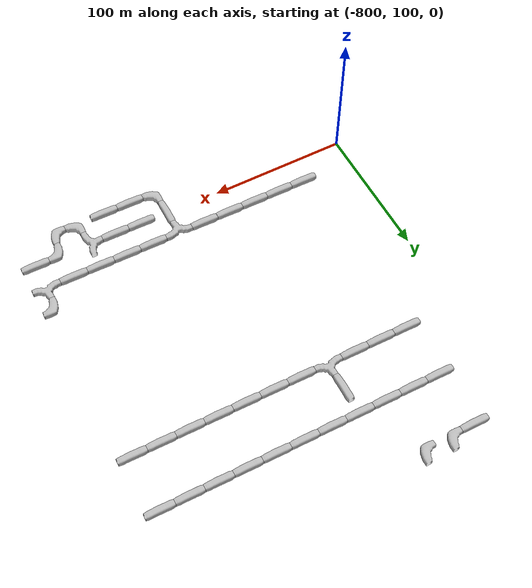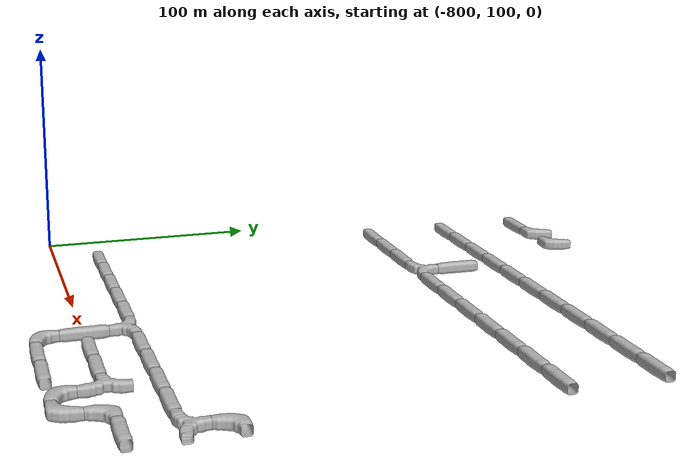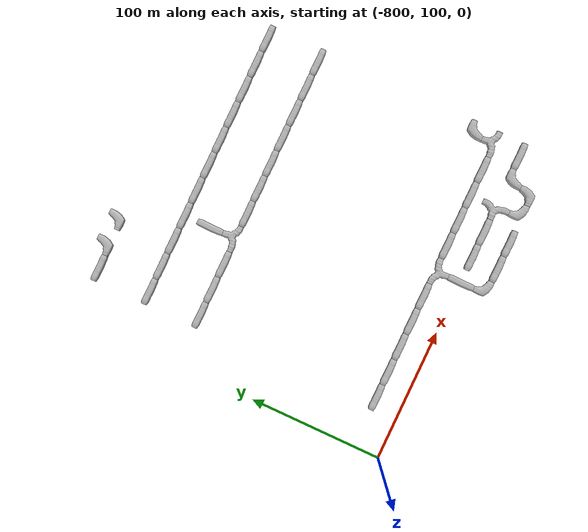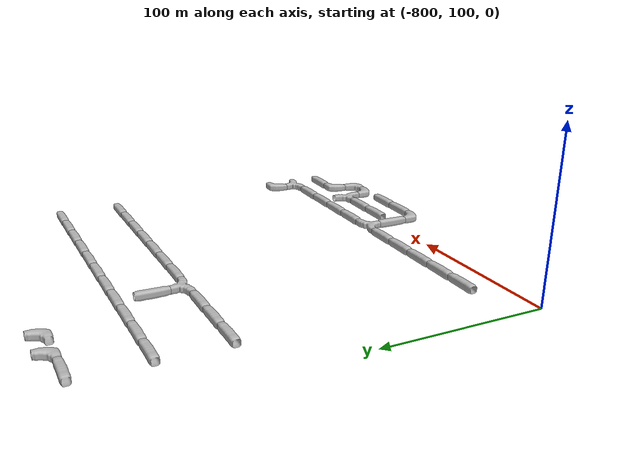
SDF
<sdf version="1.6">
 <world name="cave_16000">
  <include>
   <static>true</static>
   <name>cave_-28_5</name>
   <pose>-560 100 0 0 0 1.5707963267948966</pose>
   <uri>model://cave_straight_20m</uri>
  </include>
  <include>
   <static>true</static>
   <name>cave_-29_5</name>
   <pose>-580 100 0 0 0 -1.5707963267948966</pose>
   <uri>model://cave_L_20m</uri>
  </include>
  <include>
   <static>true</static>
   <name>cave_-29_4</name>
   <pose>-580 80 0 0 0 1.5707963267948966</pose>
   <uri>model://cave_L_20m</uri>
  </include>
  <include>
   <static>true</static>
   <name>cave_-30_4</name>
   <pose>-600 80 0 0 0 0.0</pose>
   <uri>model://cave_L_20m</uri>
  </include>
  <include>
   <static>true</static>
   <name>cave_-30_5</name>
   <pose>-600 100 0 0 0 1.5707963267948966</pose>
   <uri>model://cave_3way_20m</uri>
  </include>
  <include>
   <static>true</static>
   <name>cave_-31_5</name>
   <pose>-620 100 0 0 0 1.5707963267948966</pose>
   <uri>model://cave_straight_20m</uri>
  </include>
  <include>
   <static>true</static>
   <name>cave_-32_5</name>
   <pose>-640 100 0 0 0 1.5707963267948966</pose>
   <uri>model://cave_straight_20m</uri>
  </include>
  <include>
   <static>true</static>
   <name>cave_-28_7</name>
   <pose>-560 140 0 0 0 -1.5707963267948966</pose>
   <uri>model://cave_L_20m</uri>
  </include>
  <include>
   <static>true</static>
   <name>cave_-28_6</name>
   <pose>-560 120 0 0 0 0.0</pose>
   <uri>model://cave_3way_20m</uri>
  </include>
  <include>
   <static>true</static>
   <name>cave_-29_6</name>
   <pose>-580 120 0 0 0 1.5707963267948966</pose>
   <uri>model://cave_straight_20m</uri>
  </include>
  <include>
   <static>true</static>
   <name>cave_-30_6</name>
   <pose>-600 120 0 0 0 1.5707963267948966</pose>
   <uri>model://cave_straight_20m</uri>
  </include>
  <include>
   <static>true</static>
   <name>cave_-31_6</name>
   <pose>-620 120 0 0 0 1.5707963267948966</pose>
   <uri>model://cave_straight_20m</uri>
  </include>
  <include>
   <static>true</static>
   <name>cave_-32_6</name>
   <pose>-640 120 0 0 0 1.5707963267948966</pose>
   <uri>model://cave_straight_20m</uri>
  </include>
  <include>
   <static>true</static>
   <name>cave_-33_6</name>
   <pose>-660 120 0 0 0 3.141592653589793</pose>
   <uri>model://cave_3way_20m</uri>
  </include>
  <include>
   <static>true</static>
   <name>cave_-33_5</name>
   <pose>-660 100 0 0 0 0.0</pose>
   <uri>model://cave_straight_20m</uri>
  </include>
  <include>
   <static>true</static>
   <name>cave_-33_4</name>
   <pose>-660 80 0 0 0 0.0</pose>
   <uri>model://cave_L_20m</uri>
  </include>
  <include>
   <static>true</static>
   <name>cave_-32_4</name>
   <pose>-640 80 0 0 0 1.5707963267948966</pose>
   <uri>model://cave_straight_20m</uri>
  </include>
  <include>
   <static>true</static>
   <name>cave_-31_4</name>
   <pose>-620 80 0 0 0 1.5707963267948966</pose>
   <uri>model://cave_straight_20m</uri>
  </include>
  <include>
   <static>true</static>
   <name>cave_-34_6</name>
   <pose>-680 120 0 0 0 1.5707963267948966</pose>
   <uri>model://cave_straight_20m</uri>
  </include>
  <include>
   <static>true</static>
   <name>cave_-35_6</name>
   <pose>-700 120 0 0 0 1.5707963267948966</pose>
   <uri>model://cave_straight_20m</uri>
  </include>
  <include>
   <static>true</static>
   <name>cave_-36_6</name>
   <pose>-720 120 0 0 0 1.5707963267948966</pose>
   <uri>model://cave_straight_20m</uri>
  </include>
  <include>
   <static>true</static>
   <name>cave_-37_6</name>
   <pose>-740 120 0 0 0 1.5707963267948966</pose>
   <uri>model://cave_straight_20m</uri>
  </include>
  <include>
   <static>true</static>
   <name>cave_-38_6</name>
   <pose>-760 120 0 0 0 1.5707963267948966</pose>
   <uri>model://cave_straight_20m</uri>
  </include>
  <include>
   <static>true</static>
   <name>cave_-28_15</name>
   <pose>-560 300 0 0 0 1.5707963267948966</pose>
   <uri>model://cave_straight_20m</uri>
  </include>
  <include>
   <static>true</static>
   <name>cave_-29_15</name>
   <pose>-580 300 0 0 0 1.5707963267948966</pose>
   <uri>model://cave_straight_20m</uri>
  </include>
  <include>
   <static>true</static>
   <name>cave_-30_15</name>
   <pose>-600 300 0 0 0 1.5707963267948966</pose>
   <uri>model://cave_straight_20m</uri>
  </include>
  <include>
   <static>true</static>
   <name>cave_-31_15</name>
   <pose>-620 300 0 0 0 1.5707963267948966</pose>
   <uri>model://cave_straight_20m</uri>
  </include>
  <include>
   <static>true</static>
   <name>cave_-32_15</name>
   <pose>-640 300 0 0 0 1.5707963267948966</pose>
   <uri>model://cave_straight_20m</uri>
  </include>
  <include>
   <static>true</static>
   <name>cave_-33_15</name>
   <pose>-660 300 0 0 0 1.5707963267948966</pose>
   <uri>model://cave_straight_20m</uri>
  </include>
  <include>
   <static>true</static>
   <name>cave_-34_15</name>
   <pose>-680 300 0 0 0 1.5707963267948966</pose>
   <uri>model://cave_straight_20m</uri>
  </include>
  <include>
   <static>true</static>
   <name>cave_-35_15</name>
   <pose>-700 300 0 0 0 1.5707963267948966</pose>
   <uri>model://cave_straight_20m</uri>
  </include>
  <include>
   <static>true</static>
   <name>cave_-36_15</name>
   <pose>-720 300 0 0 0 1.5707963267948966</pose>
   <uri>model://cave_straight_20m</uri>
  </include>
  <include>
   <static>true</static>
   <name>cave_-37_15</name>
   <pose>-740 300 0 0 0 1.5707963267948966</pose>
   <uri>model://cave_straight_20m</uri>
  </include>
  <include>
   <static>true</static>
   <name>cave_-38_15</name>
   <pose>-760 300 0 0 0 1.5707963267948966</pose>
   <uri>model://cave_straight_20m</uri>
  </include>
  <include>
   <static>true</static>
   <name>cave_-38_13</name>
   <pose>-760 260 0 0 0 1.5707963267948966</pose>
   <uri>model://cave_straight_20m</uri>
  </include>
  <include>
   <static>true</static>
   <name>cave_-37_13</name>
   <pose>-740 260 0 0 0 1.5707963267948966</pose>
   <uri>model://cave_straight_20m</uri>
  </include>
  <include>
   <static>true</static>
   <name>cave_-36_13</name>
   <pose>-720 260 0 0 0 1.5707963267948966</pose>
   <uri>model://cave_straight_20m</uri>
  </include>
  <include>
   <static>true</static>
   <name>cave_-35_13</name>
   <pose>-700 260 0 0 0 0.0</pose>
   <uri>model://cave_3way_20m</uri>
  </include>
  <include>
   <static>true</static>
   <name>cave_-34_13</name>
   <pose>-680 260 0 0 0 1.5707963267948966</pose>
   <uri>model://cave_straight_20m</uri>
  </include>
  <include>
   <static>true</static>
   <name>cave_-33_13</name>
   <pose>-660 260 0 0 0 1.5707963267948966</pose>
   <uri>model://cave_straight_20m</uri>
  </include>
  <include>
   <static>true</static>
   <name>cave_-32_13</name>
   <pose>-640 260 0 0 0 1.5707963267948966</pose>
   <uri>model://cave_straight_20m</uri>
  </include>
  <include>
   <static>true</static>
   <name>cave_-31_13</name>
   <pose>-620 260 0 0 0 1.5707963267948966</pose>
   <uri>model://cave_straight_20m</uri>
  </include>
  <include>
   <static>true</static>
   <name>cave_-30_13</name>
   <pose>-600 260 0 0 0 1.5707963267948966</pose>
   <uri>model://cave_straight_20m</uri>
  </include>
  <include>
   <static>true</static>
   <name>cave_-29_13</name>
   <pose>-580 260 0 0 0 1.5707963267948966</pose>
   <uri>model://cave_straight_20m</uri>
  </include>
  <include>
   <static>true</static>
   <name>cave_-28_13</name>
   <pose>-560 260 0 0 0 1.5707963267948966</pose>
   <uri>model://cave_straight_20m</uri>
  </include>
  <include>
   <static>true</static>
   <name>cave_-35_14</name>
   <pose>-700 280 0 0 0 0.0</pose>
   <uri>model://cave_straight_20m</uri>
  </include>
  <include>
   <static>true</static>
   <name>cave_-38_17</name>
   <pose>-760 340 0 0 0 1.5707963267948966</pose>
   <uri>model://cave_straight_20m</uri>
  </include>
  <include>
   <static>true</static>
   <name>cave_-37_17</name>
   <pose>-740 340 0 0 0 1.5707963267948966</pose>
   <uri>model://cave_L_20m</uri>
  </include>
  <include>
   <static>true</static>
   <name>cave_-36_17</name>
   <pose>-720 340 0 0 0 1.5707963267948966</pose>
   <uri>model://cave_L_20m</uri>
  </include>
 </world>
</sdf>
